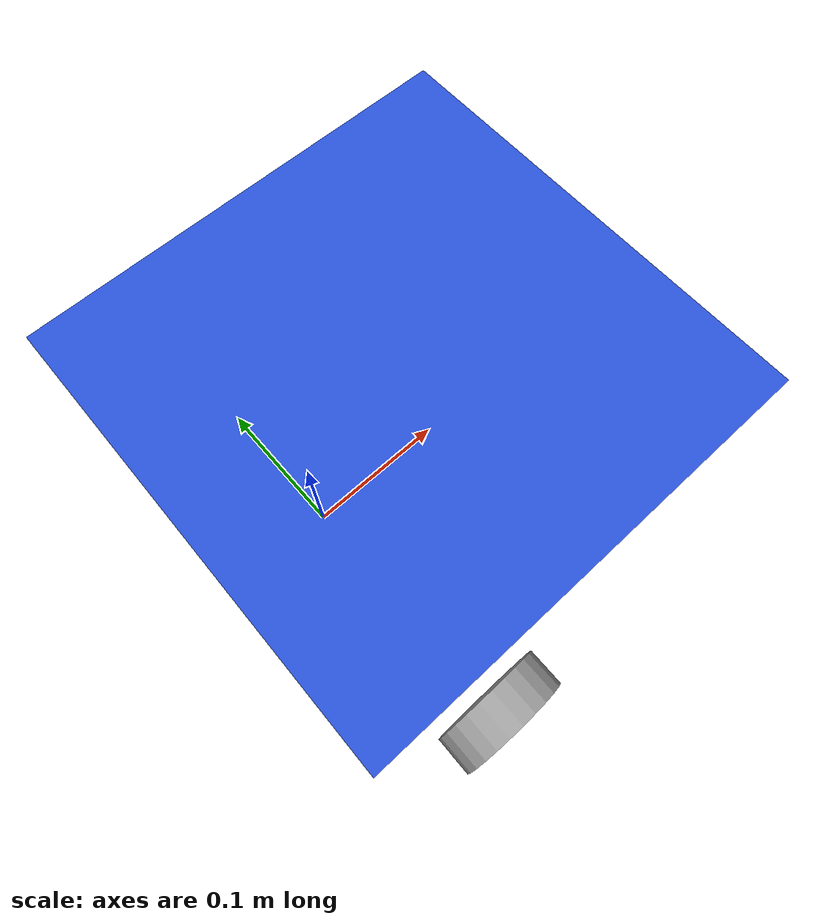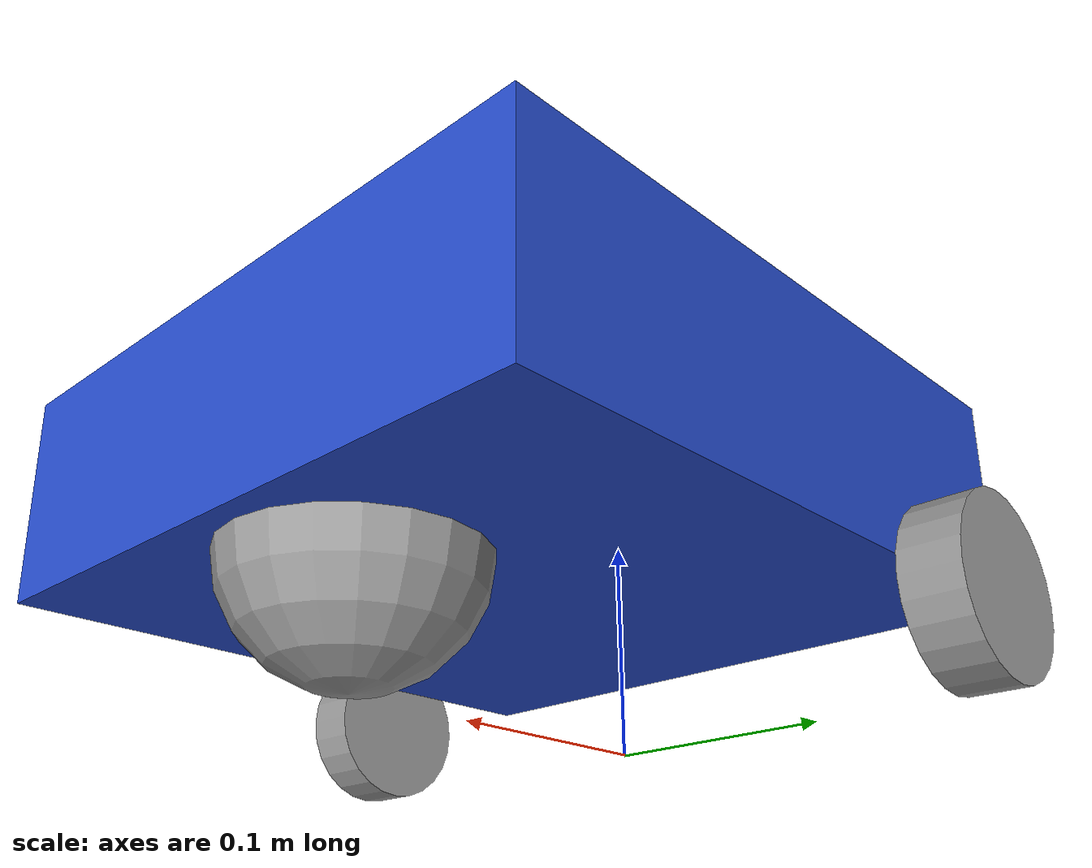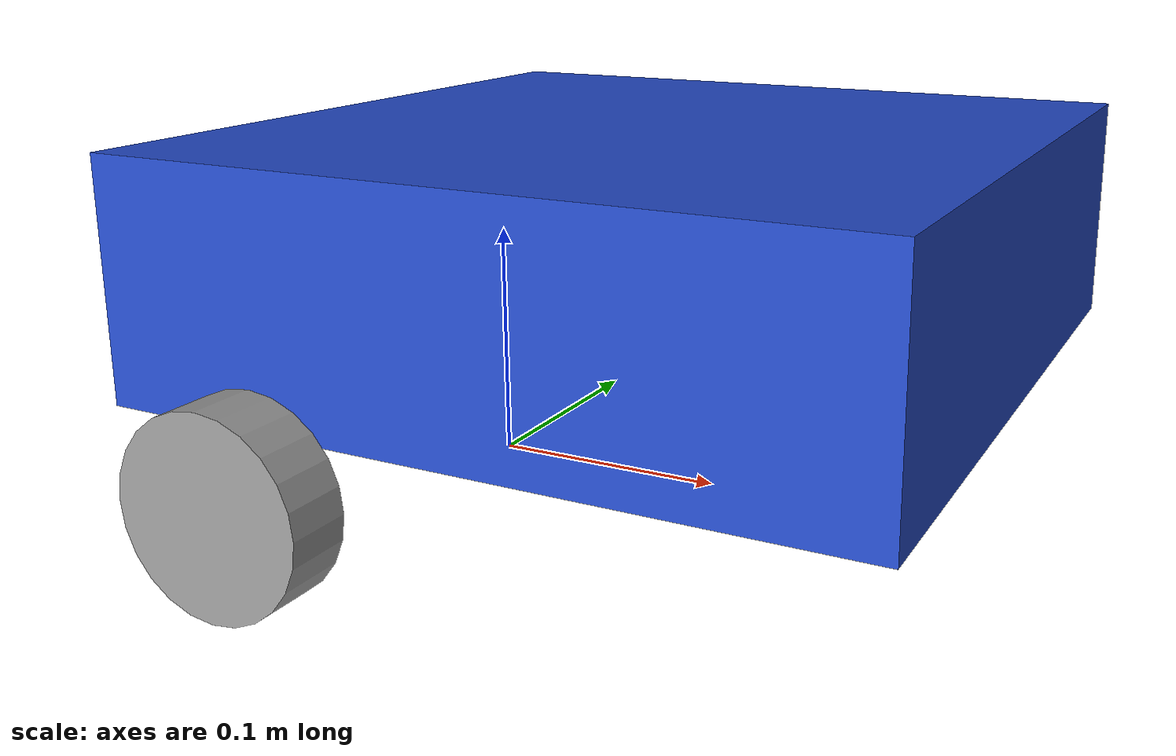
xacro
<?xml version="1.0"?>
<robot xmlns:xacro="http://www.ros.org/wiki/xacro">

    <xacro:property name="base_length" value="0.30" />
    <xacro:property name="base_width" value="0.30" />
    <xacro:property name="base_height" value="0.095" />

    <xacro:property name="base_x_offset" value="0.075" />

    <xacro:property name="base_ground" value="0.055" />

    <xacro:property name="wheel_radius" value="0.038" />
    <xacro:property name="wheel_length" value="0.025" />
    <xacro:property name="wheel_support_length" value="${base_ground - wheel_radius}" />

    <xacro:property name="caster_base_x" value="0.16" />

    <link name="base_footprint" />

    <link name="base_link">
        <visual>
            <geometry>
                <box size="${base_length} ${base_width} ${base_height}" />
            </geometry>
            <origin xyz="${base_x_offset} 0 ${base_height/2}" rpy="0 0 0" />
            <material name="blue" />
        </visual>

        <collision>
           <geometry>
                <box size="${base_length} ${base_width} ${base_height}" />
            </geometry>
            <origin xyz="${base_x_offset} 0 ${base_height/2}" rpy="0 0 0" />
        </collision>

        <xacro:box_inertia m="0.5" x="${base_length}" y="${base_width}" z="${base_height}"
            o_xyz="${base_x_offset} 0 ${base_height/2}" o_rpy="0 0 0"/>

    </link>

    <xacro:macro name="wheel_link" params="prefix">
        <link name="${prefix}_wheel_link">
            <visual>
                <geometry>
                    <cylinder radius="${wheel_radius}" length="${wheel_length}" />
                </geometry>
                <origin xyz="0 0 0" rpy="${pi / 2.0} 0 0" />
                <material name="grey" />
            </visual>

            <collision>
                <geometry>
                    <sphere radius="${wheel_radius}" />
                </geometry>
                <origin xyz="0 0 0" rpy="${pi / 2.0} 0 0" />
            </collision>

            <xacro:cylinder_inertia m="0.01" r="${wheel_radius}" h="${wheel_length}"
                    o_xyz="0 0 0" o_rpy="${pi/2.0} 0 0"/>
        </link>
    </xacro:macro>

    <xacro:wheel_link prefix="right" />
    <xacro:wheel_link prefix="left" />

    <link name="caster_wheel_link">
        <visual>
            <geometry>
                <sphere radius="${(wheel_radius + wheel_support_length)}" />
            </geometry>
            <origin xyz="0 0 0" rpy="0 0 0" />
            <material name="grey" />
        </visual>
        <collision>
            <geometry>
                <sphere radius="${ (wheel_radius + wheel_support_length)}" />
            </geometry>
            <origin xyz="0 0 0" rpy="0 0 0" />
        </collision>

        <xacro:sphere_inertia m="0.01" r="${ (wheel_radius + wheel_support_length)}"
                o_xyz="0 0 0" o_rpy="0 0 0"/>
    </link>

    <joint name="base_joint" type="fixed">
        <parent link="base_footprint" />
        <child link="base_link" />
        <origin xyz="0 0 ${base_ground}" rpy="0 0 0"/>
    </joint>

    <joint name="base_right_wheel_joint" type="continuous">
        <parent link="base_link" />
        <child link="right_wheel_link" />
        <!-- 0.01 is margin in real world -->
        <origin xyz="0 ${-(base_width + wheel_length + 0.02) / 2.0} -${wheel_support_length }" rpy="0 0 0" />
        <axis xyz="0 1 0" />
    </joint>

    <joint name="base_left_wheel_joint" type="continuous">
        <parent link="base_link" />
        <child link="left_wheel_link" />
        <!-- 0.01 is margin in real world -->
        <origin xyz="0 ${(base_width + wheel_length + 0.02) / 2.0} -${wheel_support_length}" rpy="0 0 0" />
        <axis xyz="0 1 0" />
    </joint>

    <joint name="base_caster_wheel_joint" type="fixed">
        <parent link="base_link" />
        <child link="caster_wheel_link" />
        <origin xyz="${caster_base_x} 0 0" rpy="0 0 0" />
    </joint>

</robot>
